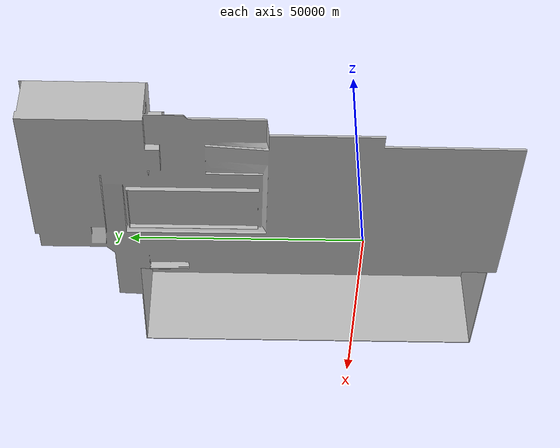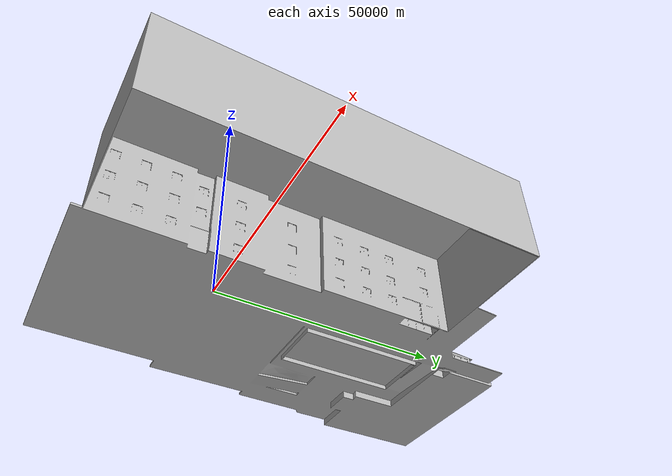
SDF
<?xml version="1.0" ?>
<sdf version="1.8">
  <model name="yamadai">
    <static>true</static>
    <link name="base">
      <pose>0 0 0 0 0 0</pose>
      <visual name="visual">
        <geometry>
          <mesh>
            <uri>model://yamadai/meshes/yamadai.dae</uri>
          </mesh>
        </geometry>
      </visual>
      <collision name="simple_collision">
        <geometry>
          <mesh>
            <uri>model://yamadai/meshes/yamadai.dae</uri>
          </mesh>
        </geometry>
        <surface>
          <friction>
            <ode>
             <mu>1.00</mu>
             <mu2>1.00</mu2>
            </ode>
          </friction>
        </surface>
      </collision>
    </link>
  </model>
</sdf>
